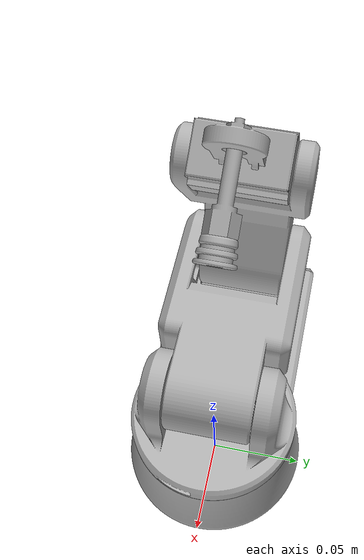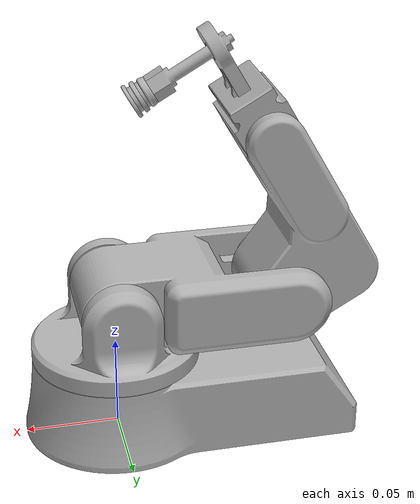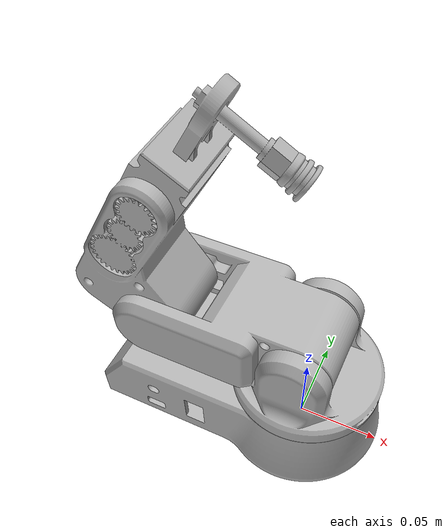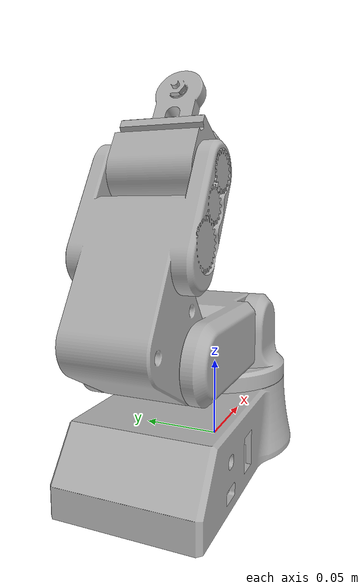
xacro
<?xml version="1.0" ?>
<robot name="urdf_minima_pump" xmlns:xacro="http://www.ros.org/wiki/xacro">

<xacro:include filename="$(find urdf_minima_pump_description)/urdf/materials.xacro" />
<xacro:include filename="$(find urdf_minima_pump_description)/urdf/urdf_minima_pump.trans" />
<xacro:include filename="$(find urdf_minima_pump_description)/urdf/urdf_minima_pump.gazebo" />
<link name="base_link">
  <inertial>
    <origin xyz="-0.02823991262326837 0.00022897397265255698 0.022351581735481227" rpy="0 0 0"/>
    <mass value="1.678664334320221"/>
    <inertia ixx="0.001714" iyy="0.004366" izz="0.005221" ixy="1.5e-05" iyz="2e-06" ixz="-0.000109"/>
  </inertial>
  <visual>
    <origin xyz="0 0 0" rpy="0 0 0"/>
    <geometry>
      <mesh filename="file://$(find urdf_minima_pump_description)/meshes/base_link.stl" scale="0.001 0.001 0.001"/>
    </geometry>
    <material name="silver"/>
  </visual>
  <collision>
    <origin xyz="0 0 0" rpy="0 0 0"/>
    <geometry>
      <mesh filename="file://$(find urdf_minima_pump_description)/meshes/base_link.stl" scale="0.001 0.001 0.001"/>
    </geometry>
  </collision>
</link>

<link name="Joint1_1">
  <inertial>
    <origin xyz="-0.0004899836188121865 -2.028457349654231e-05 0.01739452757904985" rpy="0 0 0"/>
    <mass value="0.5807379754603086"/>
    <inertia ixx="0.000548" iyy="0.000328" izz="0.000644" ixy="0.0" iyz="-1e-06" ixz="-2e-06"/>
  </inertial>
  <visual>
    <origin xyz="-0.0 -0.0 -0.043" rpy="0 0 0"/>
    <geometry>
      <mesh filename="file://$(find urdf_minima_pump_description)/meshes/Joint1_1.stl" scale="0.001 0.001 0.001"/>
    </geometry>
    <material name="silver"/>
  </visual>
  <collision>
    <origin xyz="-0.0 -0.0 -0.043" rpy="0 0 0"/>
    <geometry>
      <mesh filename="file://$(find urdf_minima_pump_description)/meshes/Joint1_1.stl" scale="0.001 0.001 0.001"/>
    </geometry>
  </collision>
</link>

<link name="Joint2_1">
  <inertial>
    <origin xyz="-0.047931940742029285 0.021374796556136878 -0.0002752579325002169" rpy="0 0 0"/>
    <mass value="0.9393120598062463"/>
    <inertia ixx="0.000699" iyy="0.001059" izz="0.001475" ixy="2.2e-05" iyz="-2e-06" ixz="-8e-06"/>
  </inertial>
  <visual>
    <origin xyz="-9e-06 0.023 -0.0758" rpy="0 0 0"/>
    <geometry>
      <mesh filename="file://$(find urdf_minima_pump_description)/meshes/Joint2_1.stl" scale="0.001 0.001 0.001"/>
    </geometry>
    <material name="silver"/>
  </visual>
  <collision>
    <origin xyz="-9e-06 0.023 -0.0758" rpy="0 0 0"/>
    <geometry>
      <mesh filename="file://$(find urdf_minima_pump_description)/meshes/Joint2_1.stl" scale="0.001 0.001 0.001"/>
    </geometry>
  </collision>
</link>

<link name="Joint3_1">
  <inertial>
    <origin xyz="0.03219247447396666 0.024730621406347183 0.027243680593609418" rpy="0 0 0"/>
    <mass value="0.6716582497226395"/>
    <inertia ixx="0.000534" iyy="0.000904" izz="0.000938" ixy="-3.6e-05" iyz="-1.8e-05" ixz="-0.000165"/>
  </inertial>
  <visual>
    <origin xyz="0.089991 0.0234 -0.0758" rpy="0 0 0"/>
    <geometry>
      <mesh filename="file://$(find urdf_minima_pump_description)/meshes/Joint3_1.stl" scale="0.001 0.001 0.001"/>
    </geometry>
    <material name="silver"/>
  </visual>
  <collision>
    <origin xyz="0.089991 0.0234 -0.0758" rpy="0 0 0"/>
    <geometry>
      <mesh filename="file://$(find urdf_minima_pump_description)/meshes/Joint3_1.stl" scale="0.001 0.001 0.001"/>
    </geometry>
  </collision>
</link>

<link name="Joint4_1">
  <inertial>
    <origin xyz="0.006530700483599535 0.019995126913877625 0.0004197559436671938" rpy="0 0 0"/>
    <mass value="0.26967809971474466"/>
    <inertia ixx="8.5e-05" iyy="4.5e-05" izz="9.1e-05" ixy="-5e-06" iyz="-1e-06" ixz="1e-06"/>
  </inertial>
  <visual>
    <origin xyz="0.005288 0.023 -0.1113" rpy="0 0 0"/>
    <geometry>
      <mesh filename="file://$(find urdf_minima_pump_description)/meshes/Joint4_1.stl" scale="0.001 0.001 0.001"/>
    </geometry>
    <material name="silver"/>
  </visual>
  <collision>
    <origin xyz="0.005288 0.023 -0.1113" rpy="0 0 0"/>
    <geometry>
      <mesh filename="file://$(find urdf_minima_pump_description)/meshes/Joint4_1.stl" scale="0.001 0.001 0.001"/>
    </geometry>
  </collision>
</link>

<link name="pump_1">
  <inertial>
    <origin xyz="0.011663335457634847 7.450850948706088e-05 -0.02355070741010884" rpy="0 0 0"/>
    <mass value="0.11239861177210043"/>
    <inertia ixx="4e-05" iyy="6.9e-05" izz="3.9e-05" ixy="-0.0" iyz="0.0" ixz="1.6e-05"/>
  </inertial>
  <visual>
    <origin xyz="-0.018343 7e-06 -0.123774" rpy="0 0 0"/>
    <geometry>
      <mesh filename="file://$(find urdf_minima_pump_description)/meshes/pump_1.stl" scale="0.001 0.001 0.001"/>
    </geometry>
    <material name="silver"/>
  </visual>
  <collision>
    <origin xyz="-0.018343 7e-06 -0.123774" rpy="0 0 0"/>
    <geometry>
      <mesh filename="file://$(find urdf_minima_pump_description)/meshes/pump_1.stl" scale="0.001 0.001 0.001"/>
    </geometry>
  </collision>
</link>

<joint name="Revolute1" type="revolute">
  <origin xyz="0.0 0.0 0.043" rpy="0 0 0"/>
  <parent link="base_link"/>
  <child link="Joint1_1"/>
  <axis xyz="0.0 -0.0 1.0"/>
  <limit upper="1.570796" lower="-1.570796" effort="100" velocity="100"/>
</joint>

<joint name="Revolute2" type="revolute">
  <origin xyz="9e-06 -0.023 0.0328" rpy="0 0 0"/>
  <parent link="Joint1_1"/>
  <child link="Joint2_1"/>
  <axis xyz="0.0 1.0 0.0"/>
  <limit upper="2.96706" lower="0.0" effort="100" velocity="100"/>
</joint>

<joint name="Revolute3" type="revolute">
  <origin xyz="-0.09 -0.0004 0.0" rpy="0 0 0"/>
  <parent link="Joint2_1"/>
  <child link="Joint3_1"/>
  <axis xyz="-0.0 1.0 0.0"/>
  <limit upper="6.283185" lower="4.18879" effort="100" velocity="100"/>
</joint>

<joint name="Revolute4" type="revolute">
  <origin xyz="0.084703 0.0004 0.0355" rpy="0 0 0"/>
  <parent link="Joint3_1"/>
  <child link="Joint4_1"/>
  <axis xyz="-0.0 1.0 0.0"/>
  <limit upper="1.570796" lower="-1.570796" effort="100" velocity="100"/>
</joint>

<joint name="Rigid5" type="fixed">
  <origin xyz="0.023631 0.022993 0.012474" rpy="0 0 0"/>
  <parent link="Joint4_1"/>
  <child link="pump_1"/>
</joint>

</robot>

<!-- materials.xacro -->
<robot name="urdf_minima_pump" xmlns:xacro="http://www.ros.org/wiki/xacro" >

<material name="silver">
  <color rgba="0.700 0.700 0.700 1.000"/>
</material>

</robot>

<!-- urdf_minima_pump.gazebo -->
<robot name="urdf_minima_pump" xmlns:xacro="http://www.ros.org/wiki/xacro" >

<xacro:property name="body_color" value="Gazebo/Silver" />

<gazebo>
  <plugin name="control" filename="libgazebo_ros_control.so"/>
</gazebo>
<gazebo reference="base_link">
  <material>${body_color}</material>
  <mu1>0.2</mu1>
  <mu2>0.2</mu2>
  <self_collide>true</self_collide>
  <gravity>true</gravity>
</gazebo>

<gazebo reference="Joint1_1">
  <material>${body_color}</material>
  <mu1>0.2</mu1>
  <mu2>0.2</mu2>
  <self_collide>true</self_collide>
</gazebo>

<gazebo reference="Joint2_1">
  <material>${body_color}</material>
  <mu1>0.2</mu1>
  <mu2>0.2</mu2>
  <self_collide>true</self_collide>
</gazebo>

<gazebo reference="Joint3_1">
  <material>${body_color}</material>
  <mu1>0.2</mu1>
  <mu2>0.2</mu2>
  <self_collide>true</self_collide>
</gazebo>

<gazebo reference="Joint4_1">
  <material>${body_color}</material>
  <mu1>0.2</mu1>
  <mu2>0.2</mu2>
  <self_collide>true</self_collide>
</gazebo>

<gazebo reference="pump_1">
  <material>${body_color}</material>
  <mu1>0.2</mu1>
  <mu2>0.2</mu2>
  <self_collide>true</self_collide>
</gazebo>

</robot>
